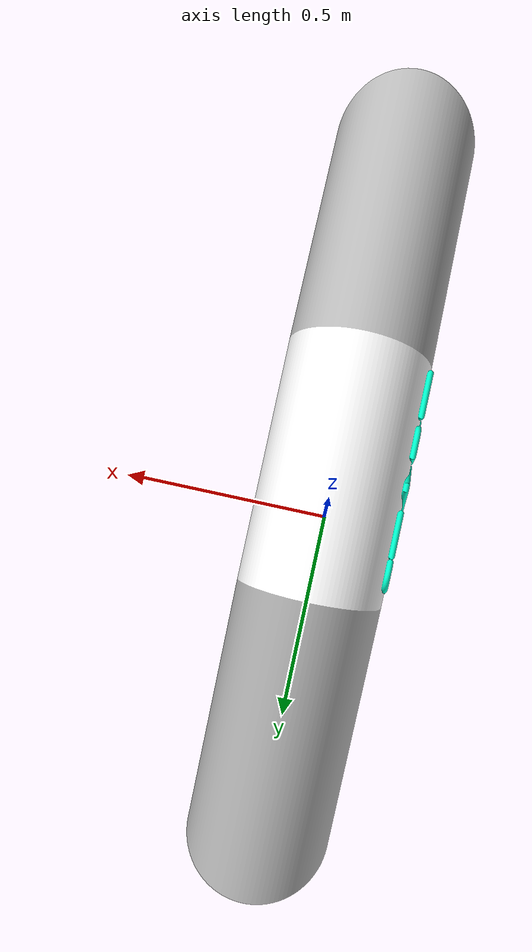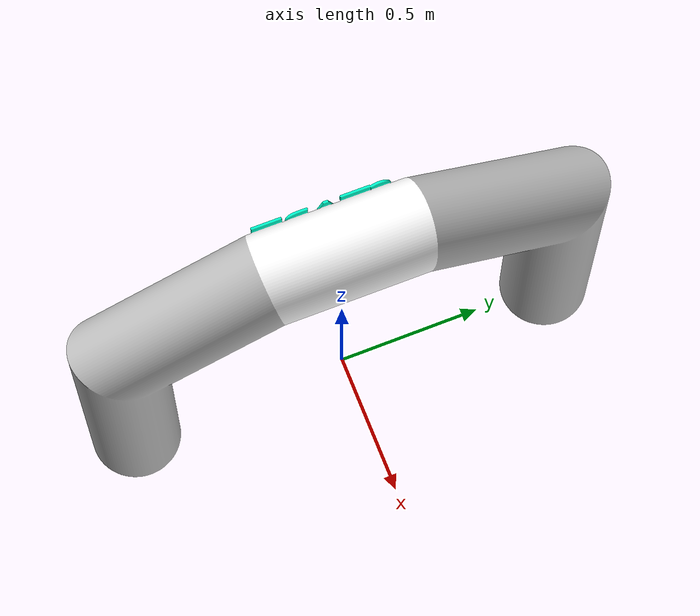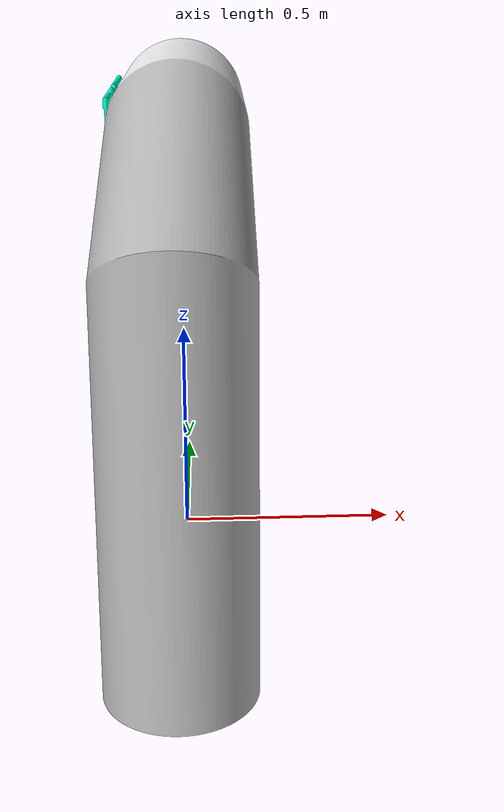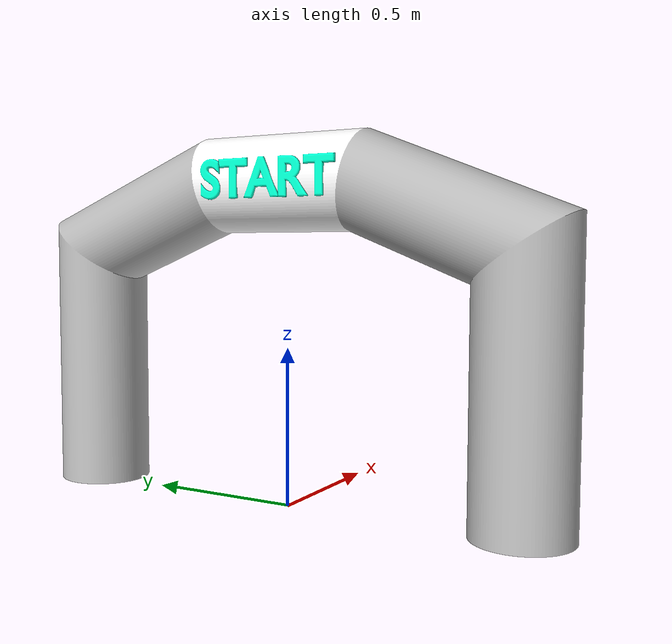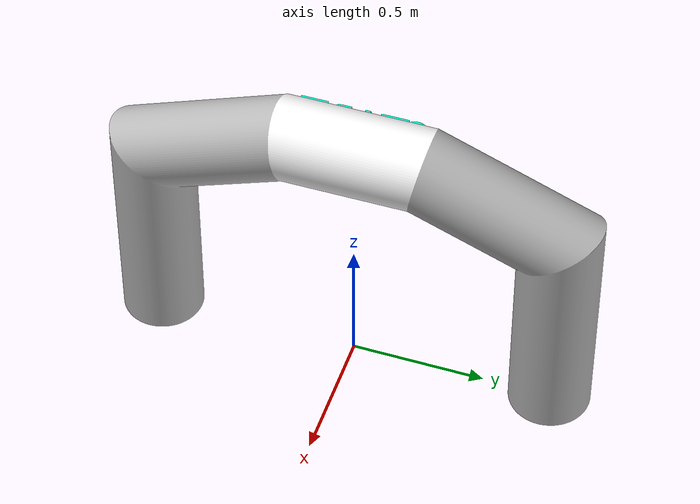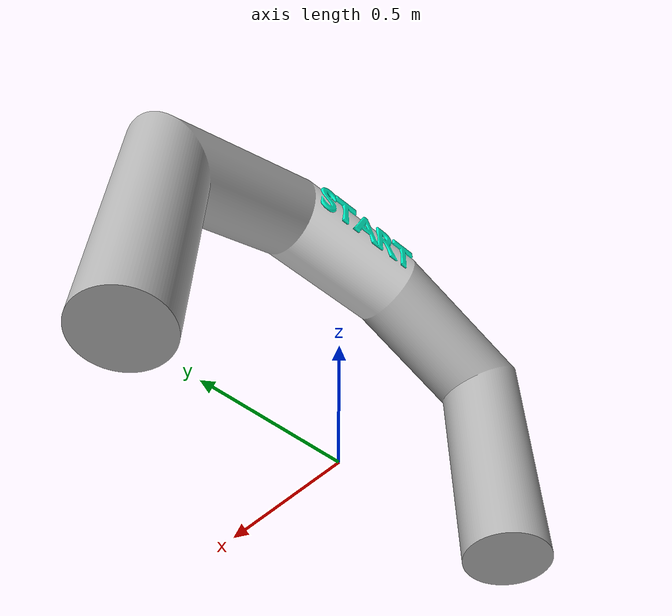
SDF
<?xml version="1.0" ?>
<sdf version='1.5'>
<model name='first_start'>
<static>true</static>
<link name="link">
   <pose frame=''>0 0 0.01 0 0 0</pose>
  <visual name='first_startV'>
    <cast_shadows>false</cast_shadows>
    <geometry>
      <mesh>
        <scale>1.0 1.0 1.0</scale>
        <uri>model://first_start/first_start2.dae</uri>
      </mesh>
    </geometry>
    <material>
      <script>
        <name>first_start</name>
        <uri>model://first_start/first_start2.dae</uri>
      </script>
    </material>
  </visual>
</link>
</model>
</sdf>
